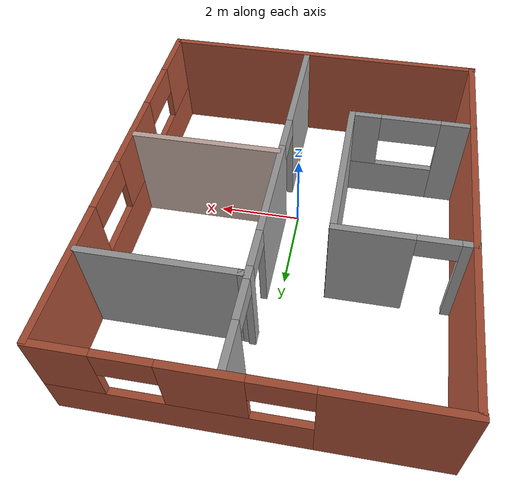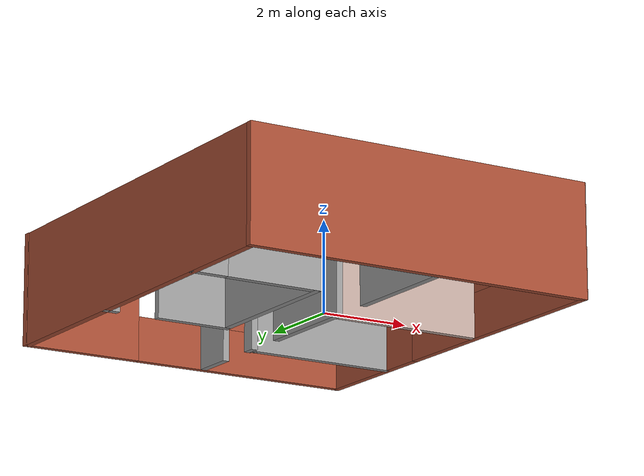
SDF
<?xml version='1.0'?>
<sdf version='1.7'>
  <model name='my_world_example'>
    <pose>-0.006622 1.02346 0 0 -0 0</pose>
    <link name='Wall_14'>
      <collision name='Wall_14_Collision'>
        <geometry>
          <box>
            <size>0.15 0.15 2.5</size>
          </box>
        </geometry>
        <pose>0 0 1.25 0 -0 0</pose>
      </collision>
      <visual name='Wall_14_Visual'>
        <pose>0 0 1.25 0 -0 0</pose>
        <geometry>
          <box>
            <size>0.15 0.15 2.5</size>
          </box>
        </geometry>
        <material>
          <script>
            <uri>file://media/materials/scripts/gazebo.material</uri>
            <name>Gazebo/Grey</name>
          </script>
          <ambient>1 1 1 1</ambient>
        </material>
        <meta>
          <layer>0</layer>
        </meta>
      </visual>
      <pose>0.509968 2.60791 0 0 -0 0</pose>
    </link>
    <link name='Wall_3'>
      <pose>3.93862 -0.015464 0 0 -0 -1.5708</pose>
      <visual name='Wall_3_Visual_0'>
        <pose>-3.13619 0 1.25 0 -0 0</pose>
        <geometry>
          <box>
            <size>3.22762 0.15 2.5</size>
          </box>
        </geometry>
        <material>
          <script>
            <uri>file://media/materials/scripts/gazebo.material</uri>
            <name>Gazebo/Bricks</name>
          </script>
          <ambient>1 1 1 1</ambient>
        </material>
        <meta>
          <layer>0</layer>
        </meta>
      </visual>
      <collision name='Wall_3_Collision_0'>
        <geometry>
          <box>
            <size>3.22762 0.15 2.5</size>
          </box>
        </geometry>
        <pose>-3.13619 0 1.25 0 -0 0</pose>
      </collision>
      <visual name='Wall_3_Visual_1'>
        <pose>1.61381 0 0.5 0 -0 0</pose>
        <geometry>
          <box>
            <size>6.27238 0.15 1</size>
          </box>
        </geometry>
        <material>
          <script>
            <uri>file://media/materials/scripts/gazebo.material</uri>
            <name>Gazebo/Bricks</name>
          </script>
          <ambient>1 1 1 1</ambient>
        </material>
        <meta>
          <layer>0</layer>
        </meta>
      </visual>
      <collision name='Wall_3_Collision_1'>
        <geometry>
          <box>
            <size>6.27238 0.15 1</size>
          </box>
        </geometry>
        <pose>1.61381 0 0.5 0 -0 0</pose>
      </collision>
      <visual name='Wall_3_Visual_2'>
        <pose>0.90617 0 1.75 0 -0 0</pose>
        <geometry>
          <box>
            <size>2.10109 0.15 1.5</size>
          </box>
        </geometry>
        <material>
          <script>
            <uri>file://media/materials/scripts/gazebo.material</uri>
            <name>Gazebo/Bricks</name>
          </script>
          <ambient>1 1 1 1</ambient>
        </material>
        <meta>
          <layer>0</layer>
        </meta>
      </visual>
      <collision name='Wall_3_Collision_2'>
        <geometry>
          <box>
            <size>2.10109 0.15 1.5</size>
          </box>
        </geometry>
        <pose>0.90617 0 1.75 0 -0 0</pose>
      </collision>
      <visual name='Wall_3_Visual_3'>
        <pose>4.03836 0 1.75 0 -0 0</pose>
        <geometry>
          <box>
            <size>1.42328 0.15 1.5</size>
          </box>
        </geometry>
        <material>
          <script>
            <uri>file://media/materials/scripts/gazebo.material</uri>
            <name>Gazebo/Bricks</name>
          </script>
          <ambient>1 1 1 1</ambient>
        </material>
        <meta>
          <layer>0</layer>
        </meta>
      </visual>
      <collision name='Wall_3_Collision_3'>
        <geometry>
          <box>
            <size>1.42328 0.15 1.5</size>
          </box>
        </geometry>
        <pose>4.03836 0 1.75 0 -0 0</pose>
      </collision>
      <visual name='Wall_3_Visual_4'>
        <pose>-0.833377 0 2.15 0 -0 0</pose>
        <geometry>
          <box>
            <size>1.378 0.15 0.7</size>
          </box>
        </geometry>
        <material>
          <script>
            <uri>file://media/materials/scripts/gazebo.material</uri>
            <name>Gazebo/Bricks</name>
          </script>
          <ambient>1 1 1 1</ambient>
        </material>
        <meta>
          <layer>0</layer>
        </meta>
      </visual>
      <collision name='Wall_3_Collision_4'>
        <geometry>
          <box>
            <size>1.378 0.15 0.7</size>
          </box>
        </geometry>
        <pose>-0.833377 0 2.15 0 -0 0</pose>
      </collision>
      <visual name='Wall_3_Visual_5'>
        <pose>2.64172 0 2.15 0 -0 0</pose>
        <geometry>
          <box>
            <size>1.37 0.15 0.7</size>
          </box>
        </geometry>
        <material>
          <script>
            <uri>file://media/materials/scripts/gazebo.material</uri>
            <name>Gazebo/Bricks</name>
          </script>
          <ambient>1 1 1 1</ambient>
        </material>
        <meta>
          <layer>0</layer>
        </meta>
      </visual>
      <collision name='Wall_3_Collision_5'>
        <geometry>
          <box>
            <size>1.37 0.15 0.7</size>
          </box>
        </geometry>
        <pose>2.64172 0 2.15 0 -0 0</pose>
      </collision>
    </link>
    <link name='Wall_33'>
      <collision name='Wall_33_Collision'>
        <geometry>
          <box>
            <size>9.5 0.15 2.5</size>
          </box>
        </geometry>
        <pose>0 0 1.25 0 -0 0</pose>
      </collision>
      <visual name='Wall_33_Visual'>
        <pose>0 0 1.25 0 -0 0</pose>
        <geometry>
          <box>
            <size>9.5 0.15 2.5</size>
          </box>
        </geometry>
        <material>
          <script>
            <uri>file://media/materials/scripts/gazebo.material</uri>
            <name>Gazebo/Bricks</name>
          </script>
          <ambient>1 1 1 1</ambient>
        </material>
        <meta>
          <layer>0</layer>
        </meta>
      </visual>
      <pose>-3.92017 0.013616 0 0 -0 -1.5708</pose>
    </link>
    <link name='Wall_35'>
      <pose>-2.48639 1.16661 0 0 -0 0</pose>
      <visual name='Wall_35_Visual_0'>
        <pose>-1.32433 0 1.25 0 -0 0</pose>
        <geometry>
          <box>
            <size>0.35134 0.15 2.5</size>
          </box>
        </geometry>
        <material>
          <script>
            <uri>file://media/materials/scripts/gazebo.material</uri>
            <name>Gazebo/Grey</name>
          </script>
          <ambient>1 1 1 1</ambient>
        </material>
        <meta>
          <layer>0</layer>
        </meta>
      </visual>
      <collision name='Wall_35_Collision_0'>
        <geometry>
          <box>
            <size>0.35134 0.15 2.5</size>
          </box>
        </geometry>
        <pose>-1.32433 0 1.25 0 -0 0</pose>
      </collision>
      <visual name='Wall_35_Visual_1'>
        <pose>0.62567 0 1.25 0 -0 0</pose>
        <geometry>
          <box>
            <size>1.74866 0.15 2.5</size>
          </box>
        </geometry>
        <material>
          <script>
            <uri>file://media/materials/scripts/gazebo.material</uri>
            <name>Gazebo/Grey</name>
          </script>
          <ambient>1 1 1 1</ambient>
        </material>
        <meta>
          <layer>0</layer>
        </meta>
      </visual>
      <collision name='Wall_35_Collision_1'>
        <geometry>
          <box>
            <size>1.74866 0.15 2.5</size>
          </box>
        </geometry>
        <pose>0.62567 0 1.25 0 -0 0</pose>
      </collision>
      <visual name='Wall_35_Visual_2'>
        <pose>-0.69866 0 2.25 0 -0 0</pose>
        <geometry>
          <box>
            <size>0.9 0.15 0.5</size>
          </box>
        </geometry>
        <material>
          <script>
            <uri>file://media/materials/scripts/gazebo.material</uri>
            <name>Gazebo/Grey</name>
          </script>
          <ambient>1 1 1 1</ambient>
        </material>
        <meta>
          <layer>0</layer>
        </meta>
      </visual>
      <collision name='Wall_35_Collision_2'>
        <geometry>
          <box>
            <size>0.9 0.15 0.5</size>
          </box>
        </geometry>
        <pose>-0.69866 0 2.25 0 -0 0</pose>
      </collision>
    </link>
    <link name='Wall_38'>
      <pose>-0.013622 4.69452 0 0 -0 0</pose>
      <visual name='Wall_38_Visual_0'>
        <pose>-2.6211 0 1.25 0 -0 0</pose>
        <geometry>
          <box>
            <size>2.75779 0.15 2.5</size>
          </box>
        </geometry>
        <material>
          <script>
            <uri>file://media/materials/scripts/gazebo.material</uri>
            <name>Gazebo/Bricks</name>
          </script>
          <ambient>1 1 1 1</ambient>
        </material>
        <meta>
          <layer>0</layer>
        </meta>
      </visual>
      <collision name='Wall_38_Collision_0'>
        <geometry>
          <box>
            <size>2.75779 0.15 2.5</size>
          </box>
        </geometry>
        <pose>-2.6211 0 1.25 0 -0 0</pose>
      </collision>
      <visual name='Wall_38_Visual_1'>
        <pose>1.3789 0 0.5 0 -0 0</pose>
        <geometry>
          <box>
            <size>5.24221 0.15 1</size>
          </box>
        </geometry>
        <material>
          <script>
            <uri>file://media/materials/scripts/gazebo.material</uri>
            <name>Gazebo/Bricks</name>
          </script>
          <ambient>1 1 1 1</ambient>
        </material>
        <meta>
          <layer>0</layer>
        </meta>
      </visual>
      <collision name='Wall_38_Collision_1'>
        <geometry>
          <box>
            <size>5.24221 0.15 1</size>
          </box>
        </geometry>
        <pose>1.3789 0 0.5 0 -0 0</pose>
      </collision>
      <visual name='Wall_38_Visual_2'>
        <pose>0.777661 0 1.75 0 -0 0</pose>
        <geometry>
          <box>
            <size>1.59774 0.15 1.5</size>
          </box>
        </geometry>
        <material>
          <script>
            <uri>file://media/materials/scripts/gazebo.material</uri>
            <name>Gazebo/Bricks</name>
          </script>
          <ambient>1 1 1 1</ambient>
        </material>
        <meta>
          <layer>0</layer>
        </meta>
      </visual>
      <collision name='Wall_38_Collision_2'>
        <geometry>
          <box>
            <size>1.59774 0.15 1.5</size>
          </box>
        </geometry>
        <pose>0.777661 0 1.75 0 -0 0</pose>
      </collision>
      <visual name='Wall_38_Visual_3'>
        <pose>3.36977 0 1.75 0 -0 0</pose>
        <geometry>
          <box>
            <size>1.26047 0.15 1.5</size>
          </box>
        </geometry>
        <material>
          <script>
            <uri>file://media/materials/scripts/gazebo.material</uri>
            <name>Gazebo/Bricks</name>
          </script>
          <ambient>1 1 1 1</ambient>
        </material>
        <meta>
          <layer>0</layer>
        </meta>
      </visual>
      <collision name='Wall_38_Collision_3'>
        <geometry>
          <box>
            <size>1.26047 0.15 1.5</size>
          </box>
        </geometry>
        <pose>3.36977 0 1.75 0 -0 0</pose>
      </collision>
      <visual name='Wall_38_Visual_4'>
        <pose>-0.631709 0 2.15 0 -0 0</pose>
        <geometry>
          <box>
            <size>1.221 0.15 0.7</size>
          </box>
        </geometry>
        <material>
          <script>
            <uri>file://media/materials/scripts/gazebo.material</uri>
            <name>Gazebo/Bricks</name>
          </script>
          <ambient>1 1 1 1</ambient>
        </material>
        <meta>
          <layer>0</layer>
        </meta>
      </visual>
      <collision name='Wall_38_Collision_4'>
        <geometry>
          <box>
            <size>1.221 0.15 0.7</size>
          </box>
        </geometry>
        <pose>-0.631709 0 2.15 0 -0 0</pose>
      </collision>
      <visual name='Wall_38_Visual_5'>
        <pose>2.15803 0 2.15 0 -0 0</pose>
        <geometry>
          <box>
            <size>1.163 0.15 0.7</size>
          </box>
        </geometry>
        <material>
          <script>
            <uri>file://media/materials/scripts/gazebo.material</uri>
            <name>Gazebo/Bricks</name>
          </script>
          <ambient>1 1 1 1</ambient>
        </material>
        <meta>
          <layer>0</layer>
        </meta>
      </visual>
      <collision name='Wall_38_Collision_5'>
        <geometry>
          <box>
            <size>1.163 0.15 0.7</size>
          </box>
        </geometry>
        <pose>2.15803 0 2.15 0 -0 0</pose>
      </collision>
    </link>
    <link name='Wall_42'>
      <pose>0.387902 0.000987 0 0 -0 -1.5708</pose>
      <visual name='Wall_42_Visual_0'>
        <pose>-4.12408 0 1.25 0 -0 0</pose>
        <geometry>
          <box>
            <size>1.00184 0.15 2.5</size>
          </box>
        </geometry>
        <material>
          <script>
            <uri>file://media/materials/scripts/gazebo.material</uri>
            <name>Gazebo/Grey</name>
          </script>
          <ambient>1 1 1 1</ambient>
        </material>
        <meta>
          <layer>0</layer>
        </meta>
      </visual>
      <collision name='Wall_42_Collision_0'>
        <geometry>
          <box>
            <size>1.00184 0.15 2.5</size>
          </box>
        </geometry>
        <pose>-4.12408 0 1.25 0 -0 0</pose>
      </collision>
      <visual name='Wall_42_Visual_1'>
        <pose>-2.5695 0 1.25 0 -0 0</pose>
        <geometry>
          <box>
            <size>0.307325 0.15 2.5</size>
          </box>
        </geometry>
        <material>
          <script>
            <uri>file://media/materials/scripts/gazebo.material</uri>
            <name>Gazebo/Grey</name>
          </script>
          <ambient>1 1 1 1</ambient>
        </material>
        <meta>
          <layer>0</layer>
        </meta>
      </visual>
      <collision name='Wall_42_Collision_1'>
        <geometry>
          <box>
            <size>0.307325 0.15 2.5</size>
          </box>
        </geometry>
        <pose>-2.5695 0 1.25 0 -0 0</pose>
      </collision>
      <visual name='Wall_42_Visual_2'>
        <pose>-0.245259 0 1.25 0 -0 0</pose>
        <geometry>
          <box>
            <size>2.54116 0.15 2.5</size>
          </box>
        </geometry>
        <material>
          <script>
            <uri>file://media/materials/scripts/gazebo.material</uri>
            <name>Gazebo/Grey</name>
          </script>
          <ambient>1 1 1 1</ambient>
        </material>
        <meta>
          <layer>0</layer>
        </meta>
      </visual>
      <collision name='Wall_42_Collision_2'>
        <geometry>
          <box>
            <size>2.54116 0.15 2.5</size>
          </box>
        </geometry>
        <pose>-0.245259 0 1.25 0 -0 0</pose>
      </collision>
      <visual name='Wall_42_Visual_3'>
        <pose>3.27516 0 1.25 0 -0 0</pose>
        <geometry>
          <box>
            <size>2.69968 0.15 2.5</size>
          </box>
        </geometry>
        <material>
          <script>
            <uri>file://media/materials/scripts/gazebo.material</uri>
            <name>Gazebo/Grey</name>
          </script>
          <ambient>1 1 1 1</ambient>
        </material>
        <meta>
          <layer>0</layer>
        </meta>
      </visual>
      <collision name='Wall_42_Collision_3'>
        <geometry>
          <box>
            <size>2.69968 0.15 2.5</size>
          </box>
        </geometry>
        <pose>3.27516 0 1.25 0 -0 0</pose>
      </collision>
      <visual name='Wall_42_Visual_4'>
        <pose>-3.17316 0 2.25 0 -0 0</pose>
        <geometry>
          <box>
            <size>0.9 0.15 0.5</size>
          </box>
        </geometry>
        <material>
          <script>
            <uri>file://media/materials/scripts/gazebo.material</uri>
            <name>Gazebo/Grey</name>
          </script>
          <ambient>1 1 1 1</ambient>
        </material>
        <meta>
          <layer>0</layer>
        </meta>
      </visual>
      <collision name='Wall_42_Collision_4'>
        <geometry>
          <box>
            <size>0.9 0.15 0.5</size>
          </box>
        </geometry>
        <pose>-3.17316 0 2.25 0 -0 0</pose>
      </collision>
      <visual name='Wall_42_Visual_5'>
        <pose>-1.96584 0 2.25 0 -0 0</pose>
        <geometry>
          <box>
            <size>0.9 0.15 0.5</size>
          </box>
        </geometry>
        <material>
          <script>
            <uri>file://media/materials/scripts/gazebo.material</uri>
            <name>Gazebo/Grey</name>
          </script>
          <ambient>1 1 1 1</ambient>
        </material>
        <meta>
          <layer>0</layer>
        </meta>
      </visual>
      <collision name='Wall_42_Collision_5'>
        <geometry>
          <box>
            <size>0.9 0.15 0.5</size>
          </box>
        </geometry>
        <pose>-1.96584 0 2.25 0 -0 0</pose>
      </collision>
      <visual name='Wall_42_Visual_6'>
        <pose>1.47532 0 2.25 0 -0 0</pose>
        <geometry>
          <box>
            <size>0.9 0.15 0.5</size>
          </box>
        </geometry>
        <material>
          <script>
            <uri>file://media/materials/scripts/gazebo.material</uri>
            <name>Gazebo/Grey</name>
          </script>
          <ambient>1 1 1 1</ambient>
        </material>
        <meta>
          <layer>0</layer>
        </meta>
      </visual>
      <collision name='Wall_42_Collision_6'>
        <geometry>
          <box>
            <size>0.9 0.15 0.5</size>
          </box>
        </geometry>
        <pose>1.47532 0 2.25 0 -0 0</pose>
      </collision>
    </link>
    <link name='Wall_45'>
      <collision name='Wall_45_Collision'>
        <geometry>
          <box>
            <size>3.75 0.15 2.5</size>
          </box>
        </geometry>
        <pose>0 0 1.25 0 -0 0</pose>
      </collision>
      <visual name='Wall_45_Visual'>
        <pose>0 0 1.25 0 -0 0</pose>
        <geometry>
          <box>
            <size>3.75 0.15 2.5</size>
          </box>
        </geometry>
        <material>
          <script>
            <uri>file://media/materials/scripts/gazebo.material</uri>
            <name>Gazebo/Grey</name>
          </script>
          <ambient>1 1 1 1</ambient>
        </material>
        <meta>
          <layer>0</layer>
        </meta>
      </visual>
      <pose>-1.05416 -0.637427 0 0 -0 1.5708</pose>
    </link>
    <link name='Wall_52'>
      <pose>-2.47916 -2.43743 0 0 -0 0</pose>
      <visual name='Wall_52_Visual_0'>
        <pose>-1.09324 0 1.25 0 -0 0</pose>
        <geometry>
          <box>
            <size>0.813526 0.15 2.5</size>
          </box>
        </geometry>
        <material>
          <script>
            <uri>file://media/materials/scripts/gazebo.material</uri>
            <name>Gazebo/Grey</name>
          </script>
          <ambient>1 1 1 1</ambient>
        </material>
        <meta>
          <layer>0</layer>
        </meta>
      </visual>
      <collision name='Wall_52_Collision_0'>
        <geometry>
          <box>
            <size>0.813526 0.15 2.5</size>
          </box>
        </geometry>
        <pose>-1.09324 0 1.25 0 -0 0</pose>
      </collision>
      <visual name='Wall_52_Visual_1'>
        <pose>0.406763 0 0.5 0 -0 0</pose>
        <geometry>
          <box>
            <size>2.18647 0.15 1</size>
          </box>
        </geometry>
        <material>
          <script>
            <uri>file://media/materials/scripts/gazebo.material</uri>
            <name>Gazebo/Grey</name>
          </script>
          <ambient>1 1 1 1</ambient>
        </material>
        <meta>
          <layer>0</layer>
        </meta>
      </visual>
      <collision name='Wall_52_Collision_1'>
        <geometry>
          <box>
            <size>2.18647 0.15 1</size>
          </box>
        </geometry>
        <pose>0.406763 0 0.5 0 -0 0</pose>
      </collision>
      <visual name='Wall_52_Visual_2'>
        <pose>1.11076 0 1.75 0 -0 0</pose>
        <geometry>
          <box>
            <size>0.778474 0.15 1.5</size>
          </box>
        </geometry>
        <material>
          <script>
            <uri>file://media/materials/scripts/gazebo.material</uri>
            <name>Gazebo/Grey</name>
          </script>
          <ambient>1 1 1 1</ambient>
        </material>
        <meta>
          <layer>0</layer>
        </meta>
      </visual>
      <collision name='Wall_52_Collision_2'>
        <geometry>
          <box>
            <size>0.778474 0.15 1.5</size>
          </box>
        </geometry>
        <pose>1.11076 0 1.75 0 -0 0</pose>
      </collision>
      <visual name='Wall_52_Visual_3'>
        <pose>0.017526 0 2.15 0 -0 0</pose>
        <geometry>
          <box>
            <size>1.408 0.15 0.7</size>
          </box>
        </geometry>
        <material>
          <script>
            <uri>file://media/materials/scripts/gazebo.material</uri>
            <name>Gazebo/Grey</name>
          </script>
          <ambient>1 1 1 1</ambient>
        </material>
        <meta>
          <layer>0</layer>
        </meta>
      </visual>
      <collision name='Wall_52_Collision_3'>
        <geometry>
          <box>
            <size>1.408 0.15 0.7</size>
          </box>
        </geometry>
        <pose>0.017526 0 2.15 0 -0 0</pose>
      </collision>
    </link>
    <link name='Wall_59'>
      <collision name='Wall_59_Collision'>
        <geometry>
          <box>
            <size>8 0.15 2.5</size>
          </box>
        </geometry>
        <pose>0 0 1.25 0 -0 0</pose>
      </collision>
      <visual name='Wall_59_Visual'>
        <pose>0 0 1.25 0 -0 0</pose>
        <geometry>
          <box>
            <size>8 0.15 2.5</size>
          </box>
        </geometry>
        <material>
          <script>
            <uri>file://media/materials/scripts/gazebo.material</uri>
            <name>Gazebo/Bricks</name>
          </script>
          <ambient>1 1 1 1</ambient>
        </material>
        <meta>
          <layer>0</layer>
        </meta>
      </visual>
      <pose>-0.003508 -4.69452 0 0 -0 3.14159</pose>
    </link>
    <link name='Wall_61'>
      <collision name='Wall_61_Collision'>
        <geometry>
          <box>
            <size>3.5 0.15 2.5</size>
          </box>
        </geometry>
        <pose>0 0 1.25 0 -0 0</pose>
      </collision>
      <visual name='Wall_61_Visual'>
        <pose>0 0 1.25 0 -0 0</pose>
        <geometry>
          <box>
            <size>3.5 0.15 2.5</size>
          </box>
        </geometry>
        <material>
          <script>
            <uri>file://media/materials/scripts/gazebo.material</uri>
            <name>Gazebo/Grey</name>
          </script>
          <ambient>0.760784 0.662745 0.627451 1</ambient>
        </material>
        <meta>
          <layer>0</layer>
        </meta>
      </visual>
      <pose>2.14562 -0.833464 0 0 -0 0</pose>
    </link>
    <link name='Wall_8'>
      <collision name='Wall_8_Collision'>
        <geometry>
          <box>
            <size>3.5 0.15 2.5</size>
          </box>
        </geometry>
        <pose>0 0 1.25 0 -0 0</pose>
      </collision>
      <visual name='Wall_8_Visual'>
        <pose>0 0 1.25 0 -0 0</pose>
        <geometry>
          <box>
            <size>3.5 0.15 2.5</size>
          </box>
        </geometry>
        <material>
          <script>
            <uri>file://media/materials/scripts/gazebo.material</uri>
            <name>Gazebo/Grey</name>
          </script>
          <ambient>1 1 1 1</ambient>
        </material>
        <meta>
          <layer>0</layer>
        </meta>
      </visual>
      <pose>2.18497 2.60122 0 0 -0 0</pose>
    </link>
    <static>1</static>
  </model>
</sdf>
